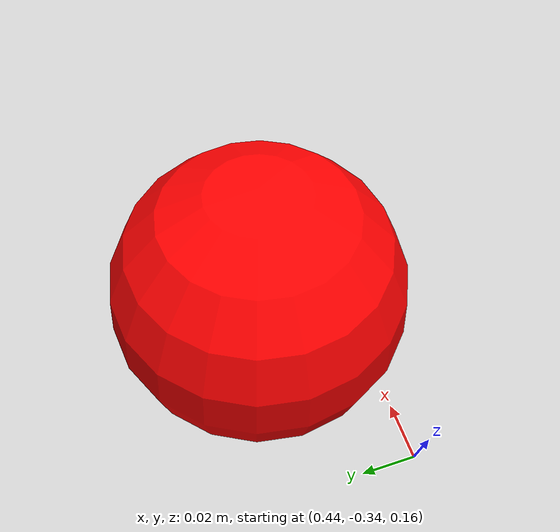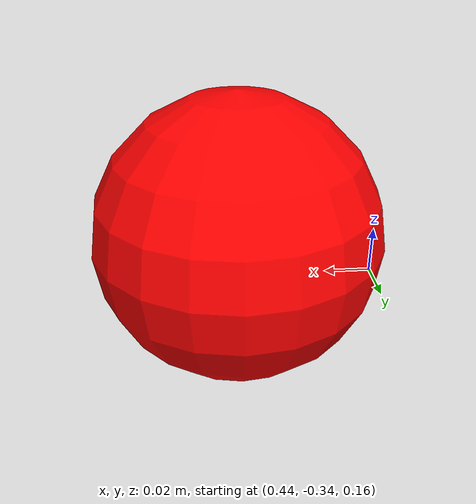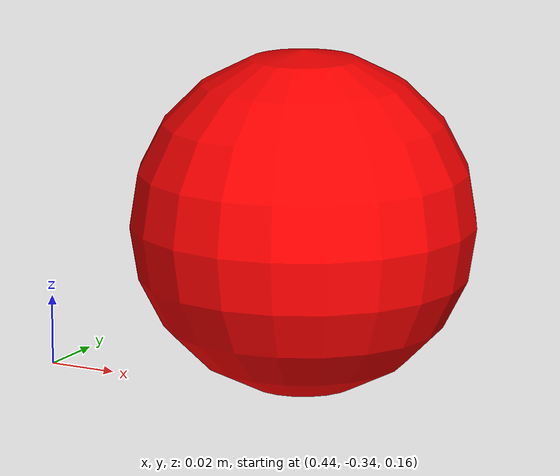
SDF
<?xml version="1.0"?>
<sdf version='1.9'>
  <model name='ball'>
    <link name='link'>
      <pose>0.5 -0.3 0.2 0 0 0</pose>
      <inertial>
        <mass>1</mass>
        <inertia>
          <ixx>0.01</ixx>
          <ixy>0</ixy>
          <ixz>0</ixz>
          <iyy>0.01</iyy>
          <iyz>0</iyz>
          <izz>0.01</izz>
        </inertia>
      </inertial>
      <visual name='visual'>
        <geometry>
          <sphere>
            <radius>0.05</radius>
          </sphere>
        </geometry>
        <material>
          <diffuse>1 0 0 1</diffuse> <!-- Red color -->
        </material>
      </visual>
      <collision name='collision'>
        <geometry>
          <sphere>
            <radius>0.05</radius>
          </sphere>
        </geometry>
      </collision>
    </link>
  </model>
</sdf>
